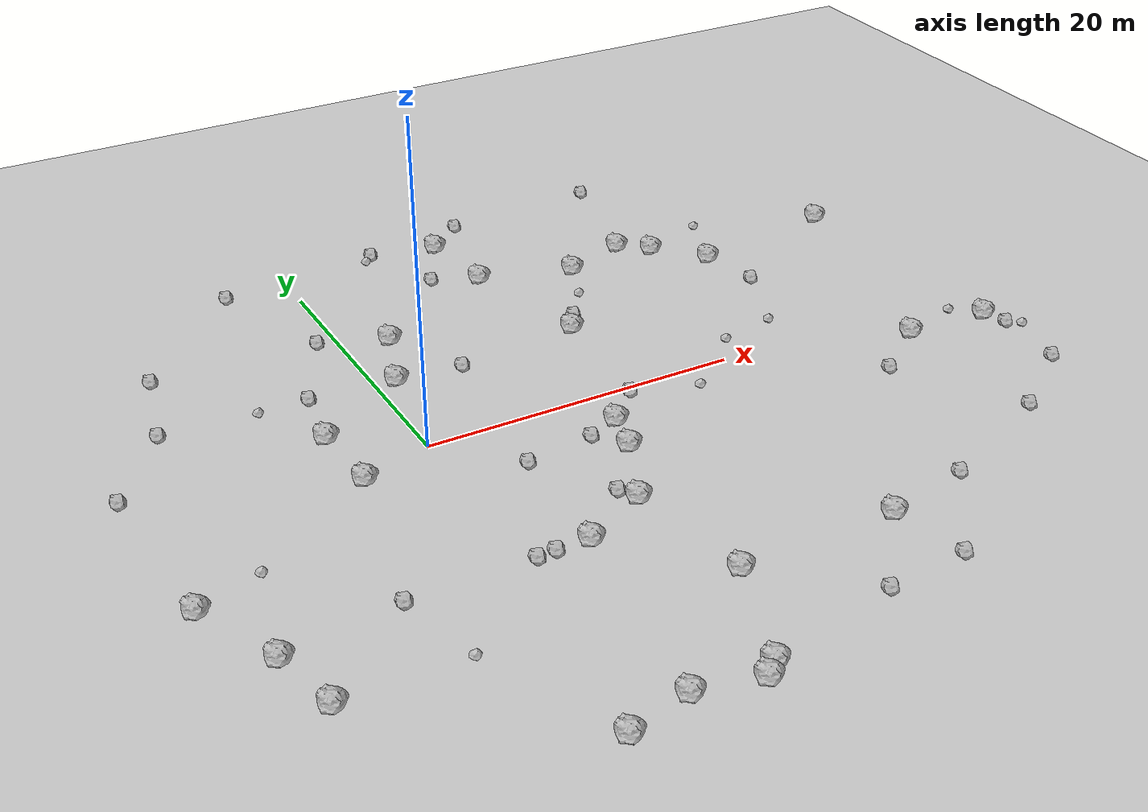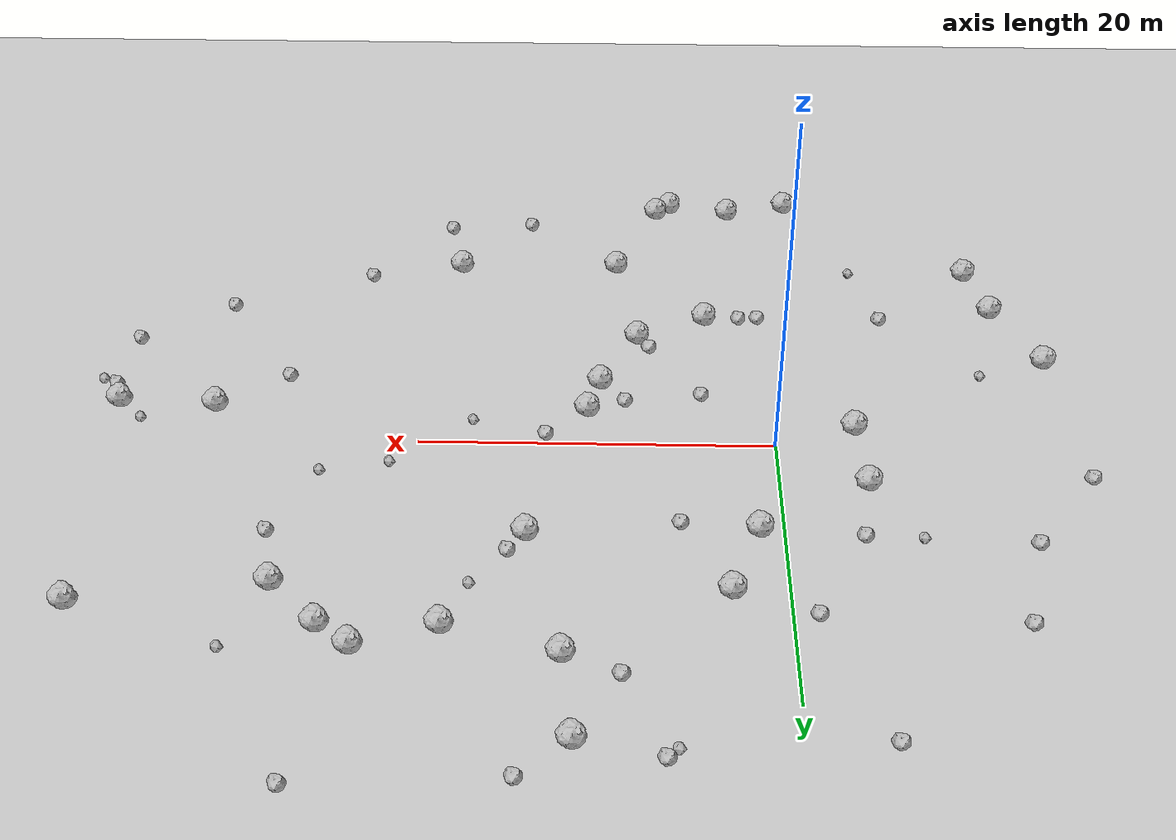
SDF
<sdf version="1.6">
 <world name="default">
  <include><uri>model://custom_ground</uri></include>
  <include><uri>model://sun</uri></include>
  <model name="rock1_0_0">
   <include><uri>model://rock1</uri><pose>3.6653722886482996 -12.690043998640913 0.5 0 0 0</pose></include>
  </model>
  <model name="rock1_0_1">
   <include><uri>model://rock1</uri><pose>-4.477950558030685 -1.691390897938465 0.5 0 0 0</pose></include>
  </model>
  <model name="rock1_0_2">
   <include><uri>model://rock1</uri><pose>-4.777577840946069 3.320997997242756 0.5 0 0 0</pose></include>
  </model>
  <model name="rock1_0_3">
   <include><uri>model://rock1</uri><pose>13.639573624925973 7.896020157260999 0.5 0 0 0</pose></include>
  </model>
  <model name="rock1_0_4">
   <include><uri>model://rock1</uri><pose>11.477394141677692 16.885441608608673 0.5 0 0 0</pose></include>
  </model>
  <model name="rock1_0_5">
   <include><uri>model://rock1</uri><pose>-13.949360761278978 -13.855348566384297 0.5 0 0 0</pose></include>
  </model>
  <model name="rock1_0_6">
   <include><uri>model://rock1</uri><pose>10.800822188598097 22.484659343086108 0.5 0 0 0</pose></include>
  </model>
  <model name="rock1_0_7">
   <include><uri>model://rock1</uri><pose>10.606213164994948 -3.0906748585599217 0.5 0 0 0</pose></include>
  </model>
  <model name="rock1_0_8">
   <include><uri>model://rock1</uri><pose>9.084160261952583 -18.64845337934864 0.5 0 0 0</pose></include>
  </model>
  <model name="rock1_0_9">
   <include><uri>model://rock1</uri><pose>-2.0617551401197396 -26.593306552363025 0.5 0 0 0</pose></include>
  </model>
  <model name="rock1_0_10">
   <include><uri>model://rock1</uri><pose>1.3256903921759111 7.331870205832374 0.5 0 0 0</pose></include>
  </model>
  <model name="rock1_0_11">
   <include><uri>model://rock1</uri><pose>-12.961444207407666 -18.17183594787869 0.5 0 0 0</pose></include>
  </model>
  <model name="rock1_0_12">
   <include><uri>model://rock1</uri><pose>17.523920949226003 15.004922340389378 0.5 0 0 0</pose></include>
  </model>
  <model name="rock1_0_13">
   <include><uri>model://rock1</uri><pose>36.46131831664435 13.692145170755623 0.5 0 0 0</pose></include>
  </model>
  <model name="rock1_0_14">
   <include><uri>model://rock1</uri><pose>7.767418925283934 -10.549874211157729 0.5 0 0 0</pose></include>
  </model>
  <model name="rock1_0_15">
   <include><uri>model://rock1</uri><pose>18.937846193540217 -18.493103683742525 0.5 0 0 0</pose></include>
  </model>
  <model name="rock1_0_16">
   <include><uri>model://rock1</uri><pose>21.831116692309998 16.54824634742998 0.5 0 0 0</pose></include>
  </model>
  <model name="rock1_0_17">
   <include><uri>model://rock1</uri><pose>2.969939974861397 12.150308465327626 0.5 0 0 0</pose></include>
  </model>
  <model name="rock1_0_18">
   <include><uri>model://rock1</uri><pose>31.987831045671612 -3.1261827631126593 0.5 0 0 0</pose></include>
  </model>
  <model name="rock1_0_19">
   <include><uri>model://rock1</uri><pose>9.911151540201764 -5.812855108611327 0.5 0 0 0</pose></include>
  </model>
  <model name="rock1_0_20">
   <include><uri>model://rock1</uri><pose>1.7695943348375636 -25.565793294236336 0.5 0 0 0</pose></include>
  </model>
  <model name="rock1_0_21">
   <include><uri>model://rock1</uri><pose>23.67440770229367 15.03975940352634 0.5 0 0 0</pose></include>
  </model>
  <model name="rock1_0_22">
   <include><uri>model://rock1</uri><pose>6.5041668381414794 -25.554018394877467 0.5 0 0 0</pose></include>
  </model>
  <model name="rock1_0_23">
   <include><uri>model://rock1</uri><pose>26.416332230866722 12.037307971487039 0.5 0 0 0</pose></include>
  </model>
  <model name="rock1_0_24">
   <include><uri>model://rock1</uri><pose>37.58363993452568 -3.424305759562017 0.5 0 0 0</pose></include>
  </model>
  <model name="rock1_0_25">
   <include><uri>model://rock1</uri><pose>-16.276942137014526 -8.456505364908622 0.5 0 0 0</pose></include>
  </model>
  <model name="rock1_0_26">
   <include><uri>model://rock1</uri><pose>5.586522364051941 -26.394344975217628 0.5 0 0 0</pose></include>
  </model>
  <model name="rock2_0_0">
   <include><uri>model://rock2</uri><pose>28.074142148735945 -5.956948132950089 0.3 0 0 0</pose></include>
  </model>
  <model name="rock2_0_1">
   <include><uri>model://rock2</uri><pose>12.874270640127719 -0.6358530650859997 0.3 0 0 0</pose></include>
  </model>
  <model name="rock2_0_2">
   <include><uri>model://rock2</uri><pose>14.481681217610252 9.388491459637088 0.3 0 0 0</pose></include>
  </model>
  <model name="rock2_0_3">
   <include><uri>model://rock2</uri><pose>5.468855520584775 6.989829308954953 0.3 0 0 0</pose></include>
  </model>
  <model name="rock2_0_4">
   <include><uri>model://rock2</uri><pose>7.0372632263896335 -9.374506497766543 0.3 0 0 0</pose></include>
  </model>
  <model name="rock2_0_5">
   <include><uri>model://rock2</uri><pose>32.649369170769056 -13.41848552926221 0.3 0 0 0</pose></include>
  </model>
  <model name="rock2_0_6">
   <include><uri>model://rock2</uri><pose>0.40926258111181113 -12.690576439196164 0.3 0 0 0</pose></include>
  </model>
  <model name="rock2_0_7">
   <include><uri>model://rock2</uri><pose>23.821508912431817 25.534869538425845 0.3 0 0 0</pose></include>
  </model>
  <model name="rock2_0_8">
   <include><uri>model://rock2</uri><pose>-4.2623632283460555 22.38742617136552 0.3 0 0 0</pose></include>
  </model>
  <model name="rock2_0_9">
   <include><uri>model://rock2</uri><pose>-11.750978510905439 14.321899450277357 0.3 0 0 0</pose></include>
  </model>
  <model name="rock2_0_10">
   <include><uri>model://rock2</uri><pose>14.688733767430897 -23.631470386455828 0.3 0 0 0</pose></include>
  </model>
  <model name="rock2_0_11">
   <include><uri>model://rock2</uri><pose>8.453408975276549 -3.8715465289990156 0.3 0 0 0</pose></include>
  </model>
  <model name="rock2_0_12">
   <include><uri>model://rock2</uri><pose>4.060783924391362 -4.535413510628274 0.3 0 0 0</pose></include>
  </model>
  <model name="rock2_0_13">
   <include><uri>model://rock2</uri><pose>13.31832819716469 24.884935057789136 0.3 0 0 0</pose></include>
  </model>
  <model name="rock2_0_14">
   <include><uri>model://rock2</uri><pose>-17.023265448518075 2.7091794942195193 0.3 0 0 0</pose></include>
  </model>
  <model name="rock2_0_15">
   <include><uri>model://rock2</uri><pose>-4.163594260384739 7.834117887574756 0.3 0 0 0</pose></include>
  </model>
  <model name="rock2_0_16">
   <include><uri>model://rock2</uri><pose>27.21938354605568 8.10013173540527 0.3 0 0 0</pose></include>
  </model>
  <model name="rock2_0_17">
   <include><uri>model://rock2</uri><pose>8.514997603015434 18.25976844554168 0.3 0 0 0</pose></include>
  </model>
  <model name="rock2_0_18">
   <include><uri>model://rock2</uri><pose>-7.0563140349259825 -12.712347111500144 0.3 0 0 0</pose></include>
  </model>
  <model name="rock2_0_19">
   <include><uri>model://rock2</uri><pose>6.408664789028787 23.579927278976882 0.3 0 0 0</pose></include>
  </model>
  <model name="rock2_0_20">
   <include><uri>model://rock2</uri><pose>19.881542448887835 -23.08362045518857 0.3 0 0 0</pose></include>
  </model>
  <model name="rock2_0_21">
   <include><uri>model://rock2</uri><pose>37.703318555077665 -9.668448728774038 0.3 0 0 0</pose></include>
  </model>
  <model name="rock2_0_22">
   <include><uri>model://rock2</uri><pose>-13.158495459357296 8.226917623981315 0.3 0 0 0</pose></include>
  </model>
  <model name="rock2_0_23">
   <include><uri>model://rock2</uri><pose>1.5491353360915525 -12.618656862112417 0.3 0 0 0</pose></include>
  </model>
  <model name="rock2_0_24">
   <include><uri>model://rock2</uri><pose>-1.2754507361684517 13.884630384350281 0.3 0 0 0</pose></include>
  </model>
  <model name="rock2_0_25">
   <include><uri>model://rock2</uri><pose>24.476985142528797 -17.07460310607083 0.3 0 0 0</pose></include>
  </model>
  <model name="rock2_0_26">
   <include><uri>model://rock2</uri><pose>38.06948047756024 -4.92961943082118 0.3 0 0 0</pose></include>
  </model>
  <model name="rock3_0_0">
   <include><uri>model://rock3</uri><pose>17.018567998416806 -1.9826439964069955 0.2 0 0 0</pose></include>
  </model>
  <model name="rock3_0_1">
   <include><uri>model://rock3</uri><pose>25.124490848449888 2.816178166164498 0.2 0 0 0</pose></include>
  </model>
  <model name="rock3_0_2">
   <include><uri>model://rock3</uri><pose>35.98689143192142 -1.8231341943594046 0.2 0 0 0</pose></include>
  </model>
  <model name="rock3_0_3">
   <include><uri>model://rock3</uri><pose>5.813784737937468 22.916431477260275 0.2 0 0 0</pose></include>
  </model>
  <model name="rock3_0_4">
   <include><uri>model://rock3</uri><pose>38.93626670865801 -5.540382894542596 0.2 0 0 0</pose></include>
  </model>
  <model name="rock3_0_5">
   <include><uri>model://rock3</uri><pose>16.25793517354181 11.87558017716892 0.2 0 0 0</pose></include>
  </model>
  <model name="rock3_0_6">
   <include><uri>model://rock3</uri><pose>28.144522716488716 16.776627674913094 0.2 0 0 0</pose></include>
  </model>
  <model name="rock3_0_7">
   <include><uri>model://rock3</uri><pose>21.36927078682878 1.9762556865963958 0.2 0 0 0</pose></include>
  </model>
  <model name="rock3_0_8">
   <include><uri>model://rock3</uri><pose>-5.737843343226212 -18.165015775090417 0.2 0 0 0</pose></include>
  </model>
  <model name="rock3_0_9">
   <include><uri>model://rock3</uri><pose>-12.388157221509044 -6.92794354158524 0.2 0 0 0</pose></include>
  </model>
  <model name="rock3_0_10">
   <include><uri>model://rock3</uri><pose>-7.268967881087294 7.8388376859821065 0.2 0 0 0</pose></include>
  </model>
 </world>
</sdf>
